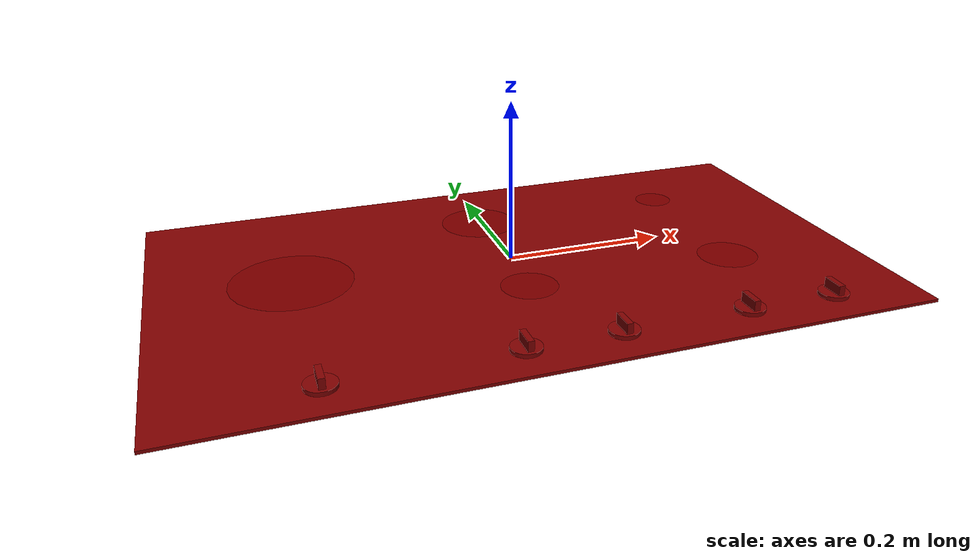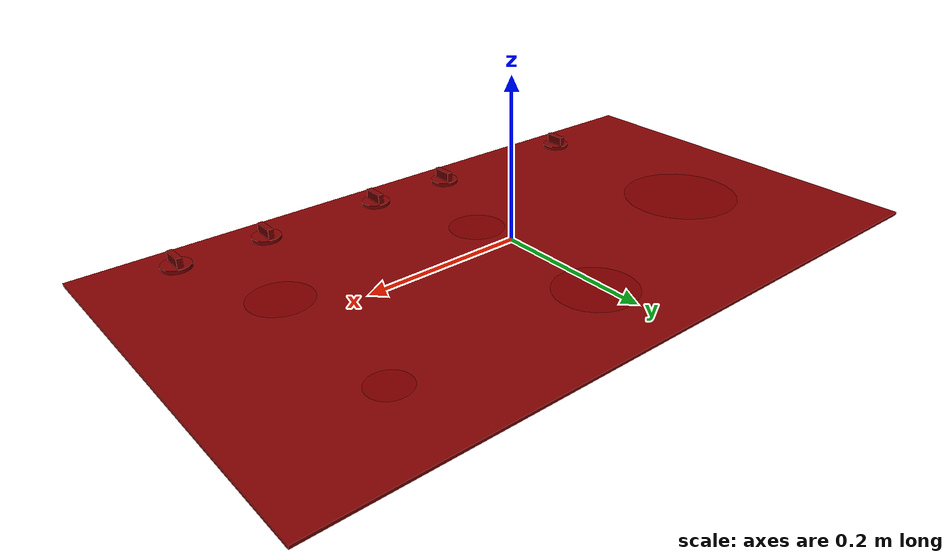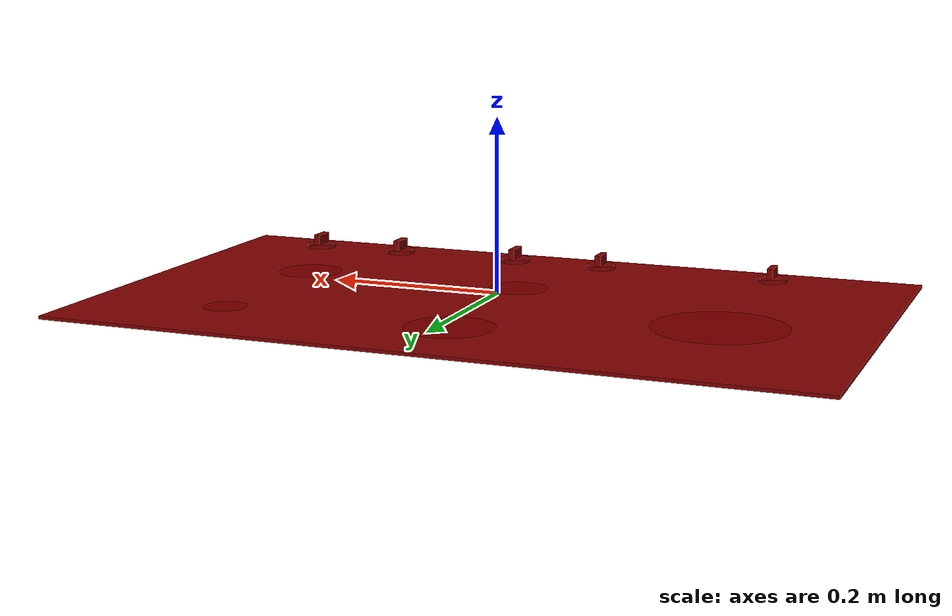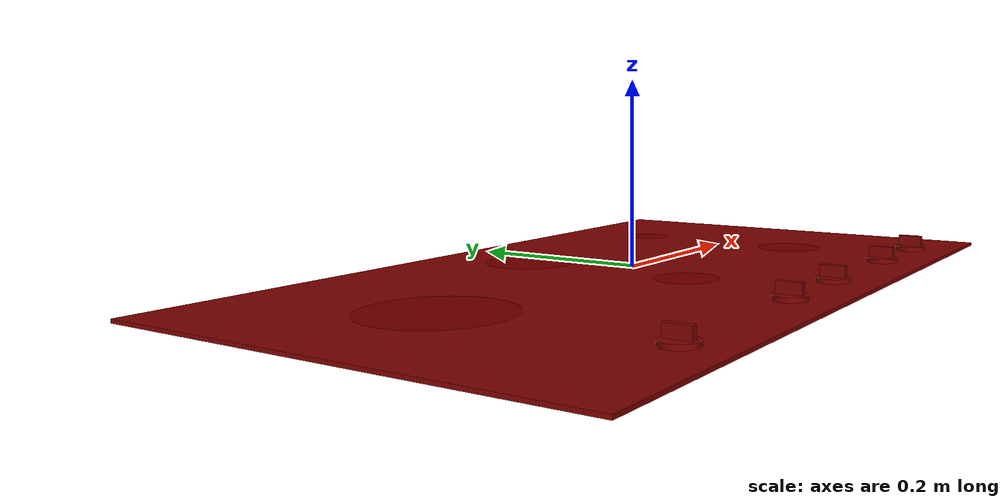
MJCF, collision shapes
<?xml version='1.0' encoding='UTF-8'?>
<mujoco model="model">
  <option timestep="0.002" gravity="0.0 0.0 -9.81"/>
  <compiler angle="radian"/>
  <asset>
    <mesh file="visuals/knob_front_center.obj" name="knob_front_center_vis"/>
    <mesh file="visuals/knob_front_left.obj" name="knob_front_left_vis"/>
    <mesh file="visuals/knob_front_right.obj" name="knob_front_right_vis"/>
    <mesh file="visuals/knob_rear_center.obj" name="knob_rear_center_vis"/>
    <mesh file="visuals/knob_rear_right.obj" name="knob_rear_right_vis"/>
    <mesh file="visuals/Body001.obj" name="Body001_vis"/>
    <texture file="visuals/T_BC001.png" name="Body001_material" type="2d"/>
    <material name="Body001_material" rgba="1 1 1 1.0" texture="Body001_material" shininess="0.1" specular="4"/>
    <texture file="visuals/T_BC001.png" name="knob_front_center_material" type="2d"/>
    <material name="knob_front_center_material" rgba="1 1 1 1.0" texture="knob_front_center_material" shininess="0.4472135901451111" specular="0.3103448502657381"/>
    <texture file="visuals/T_BC001.png" name="knob_front_left_material" type="2d"/>
    <material name="knob_front_left_material" rgba="1 1 1 1.0" texture="knob_front_left_material" shininess="0.4472135901451111" specular="0.3103448502657381"/>
    <texture file="visuals/T_BC001.png" name="knob_front_right_material" type="2d"/>
    <material name="knob_front_right_material" rgba="1 1 1 1.0" texture="knob_front_right_material" shininess="0.4472135901451111" specular="0.3103448502657381"/>
    <texture file="visuals/T_BC001.png" name="knob_rear_center_material" type="2d"/>
    <material name="knob_rear_center_material" rgba="1 1 1 1.0" texture="knob_rear_center_material" shininess="0.4472135901451111" specular="0.3103448502657381"/>
    <texture file="visuals/T_BC001.png" name="knob_rear_right_material" type="2d"/>
    <material name="knob_rear_right_material" rgba="1 1 1 1.0" texture="knob_rear_right_material" shininess="0.4472135901451111" specular="0.3103448502657381"/>
  </asset>
  <default>
    <default class="visual">
      <geom conaffinity="0" contype="0" group="1" type="mesh"/>
    </default>
    <default class="collision">
      <geom group="0" rgba="0.5 0 0 0.5"/>
    </default>
    <default class="spawn">
      <geom group="0" rgba="1 1 1 0.5" contype="0" conaffinity="0"/>
      <site group="0" rgba="1 1 1 0.5"/>
    </default>
    <default class="region">
      <geom group="1" conaffinity="0" contype="0" rgba="0 1 0 0"/>
    </default>
  </default>
  <worldbody>
    <body>
      <body name="object">
        <geom mesh="Body001_vis" type="mesh" solimp="0.998 0.998 0.001" solref="0.001 1" friction="0.95 0.3 0.1" class="visual" material="Body001_material"/>
        <geom class="collision" type="box" pos="1.2986022923655582e-08 1.4901161193847656e-08 -0.009127769619226456" size="0.43431878089904785 0.2541465163230896 0.0019151081796735525" quat="1.0 0.0 0.0 0.0" density="1000.0"/>
        <body name="knob_front_center">
          <joint axis="0.0 0.0 1.0" pos="0.05717968940734863 -0.20574688911437988 0.013265641406178474" limited="true" name="knob_front_center_joint" range="0.0 3.141592653589793" type="hinge" damping="0.05" armature="0.001"/>
          <geom mesh="knob_front_center_vis" type="mesh" solimp="0.998 0.998 0.001" solref="0.001 1" friction="0.95 0.3 0.1" class="visual" material="knob_front_center_material"/>
          <geom class="collision" type="cylinder" pos="0.05697663128376007 -0.2059555947780609 -0.00391983799636364" size="0.0178717989474535 0.0024195192381739616" quat="1.0 0.0 0.0 0.0" density="1000.0"/>
          <geom class="collision" type="box" pos="0.057253528386354446 -0.2059236764907837 0.004757525399327278" size="0.0036588506773114204 0.013517496176064014 0.006199978291988373" quat="1.0 0.0 0.0 0.0" density="1000.0"/>
        </body>
        <body name="knob_front_left">
          <joint axis="0.0 0.0 1.0" pos="-0.2670653760433197 -0.20574688911437988 0.013265641406178474" limited="true" name="knob_front_left_joint" range="0.0 3.141592653589793" type="hinge" damping="0.05" armature="0.001"/>
          <geom mesh="knob_front_left_vis" type="mesh" solimp="0.998 0.998 0.001" solref="0.001 1" friction="0.95 0.3 0.1" class="visual" material="knob_front_left_material"/>
          <geom class="collision" type="cylinder" pos="-0.26686233282089233 -0.2059555947780609 -0.00391983799636364" size="0.0178717989474535 0.0024195192381739616" quat="1.0 0.0 0.0 0.0" density="1000.0"/>
          <geom class="collision" type="box" pos="-0.267004132270813 -0.2059236764907837 0.004757525399327278" size="0.0036588506773114204 0.013517496176064014 0.006199978291988373" quat="1.0 0.0 0.0 0.0" density="1000.0"/>
        </body>
        <body name="knob_front_right">
          <joint axis="0.0 0.0 1.0" pos="0.3254004716873169 -0.20574688911437988 0.013265641406178474" limited="true" name="knob_front_right_joint" range="0.0 3.141592653589793" type="hinge" damping="0.05" armature="0.001"/>
          <geom mesh="knob_front_right_vis" type="mesh" solimp="0.998 0.998 0.001" solref="0.001 1" friction="0.95 0.3 0.1" class="visual" material="knob_front_right_material"/>
          <geom class="collision" type="cylinder" pos="0.32519739866256714 -0.2059555947780609 -0.00391983799636364" size="0.0178717989474535 0.0024195192381739616" quat="1.0 0.0 0.0 0.0" density="1000.0"/>
          <geom class="collision" type="box" pos="0.32549193501472473 -0.2059236764907837 0.004757525399327278" size="0.0036588506773114204 0.013517496176064014 0.006199978291988373" quat="1.0 0.0 0.0 0.0" density="1000.0"/>
        </body>
        <body name="knob_rear_center">
          <joint axis="0.0 0.0 1.0" pos="-0.054869040846824646 -0.20574688911437988 0.013265641406178474" limited="true" name="knob_rear_center_joint" range="0.0 3.141592653589793" type="hinge" damping="0.05" armature="0.001"/>
          <geom mesh="knob_rear_center_vis" type="mesh" solimp="0.998 0.998 0.001" solref="0.001 1" friction="0.95 0.3 0.1" class="visual" material="knob_rear_center_material"/>
          <geom class="collision" type="cylinder" pos="-0.05507209897041321 -0.2059555947780609 -0.00391983799636364" size="0.0178717989474535 0.0024195192381739616" quat="1.0 0.0 0.0 0.0" density="1000.0"/>
          <geom class="collision" type="box" pos="-0.054740794003009796 -0.2059236764907837 0.004757525399327278" size="0.0036588506773114204 0.013517496176064014 0.006199978291988373" quat="1.0 0.0 0.0 0.0" density="1000.0"/>
        </body>
        <body name="knob_rear_right">
          <joint axis="0.0 0.0 1.0" pos="0.2133517861366272 -0.20574688911437988 0.013265641406178474" limited="true" name="knob_rear_right_joint" range="0.0 3.141592653589793" type="hinge" damping="0.05" armature="0.001"/>
          <geom mesh="knob_rear_right_vis" type="mesh" solimp="0.998 0.998 0.001" solref="0.001 1" friction="0.95 0.3 0.1" class="visual" material="knob_rear_right_material"/>
          <geom class="collision" type="cylinder" pos="0.21314872801303864 -0.2059555947780609 -0.00391983799636364" size="0.0178717989474535 0.0024195192381739616" quat="1.0 0.0 0.0 0.0" density="1000.0"/>
          <geom class="collision" type="box" pos="0.21330882608890533 -0.2059236764907837 0.004757525399327278" size="0.0036588506773114204 0.013517496176064014 0.006199978291988373" quat="1.0 0.0 0.0 0.0" density="1000.0"/>
        </body>
        <site type="cylinder" rgba="0.5 0 0 0.5" size="0.02499999850988388 2.499999936844688e-05" pos="0.26937609910964966 0.13913364708423615 -0.007207673974335194" name="burner_on_rear_right"/>
        <site type="cylinder" rgba="0.5 0 0 0.5" size="0.04999999701976776 2.499999936844688e-05" pos="2.617511199787259e-06 0.13913004100322723 -0.007214796729385853" name="burner_on_rear_center"/>
        <site type="cylinder" rgba="0.5 0 0 0.5" size="0.0382668636739254 2.499999936844688e-05" pos="0.26937469840049744 -0.06633719801902771 -0.00720245111733675" name="burner_on_front_right"/>
        <site type="cylinder" rgba="0.5 0 0 0.5" size="0.07499999552965164 2.499999936844688e-05" pos="-0.2665078938007355 0.037027522921562195 -0.007201998494565487" name="burner_on_front_left"/>
        <site type="cylinder" rgba="0.5 0 0 0.5" size="0.03500000014901161 2.4049999410635792e-05" pos="2.0018414943479e-06 -0.06633328646421432 -0.007204611785709858" name="burner_on_front_center"/>
        <geom class="region" name="reg_main" type="box" pos="7.450580596923828e-09 0.0 -0.009111730381846428" size="0.43431875109672546 0.2541465163230896 0.0019311683718115091"/>
      </body>
    </body>
  </worldbody>
  <actuator>
    <motor name="knob_front_center_joint_actuator" joint="knob_front_center_joint" gear="10"/>
    <motor name="knob_front_left_joint_actuator" joint="knob_front_left_joint" gear="10"/>
    <motor name="knob_front_right_joint_actuator" joint="knob_front_right_joint" gear="10"/>
    <motor name="knob_rear_center_joint_actuator" joint="knob_rear_center_joint" gear="10"/>
    <motor name="knob_rear_right_joint_actuator" joint="knob_rear_right_joint" gear="10"/>
  </actuator>
</mujoco>
